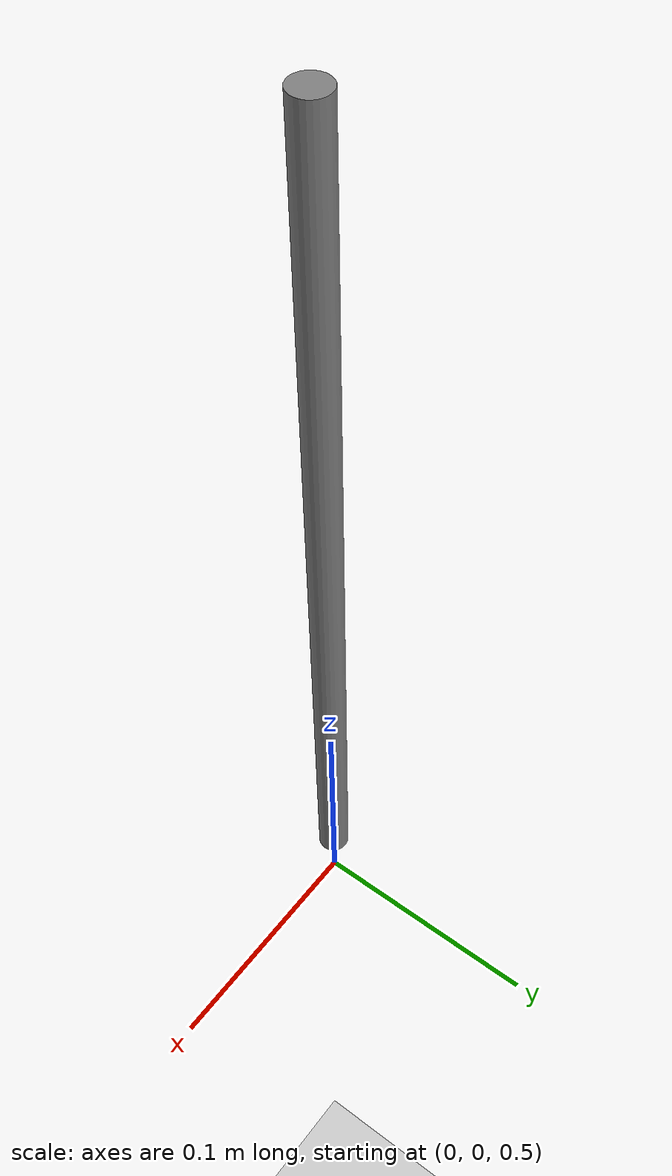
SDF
<?xml version="1.0" ?>
<sdf version="1.11">
    <world name="current_world">
        <physics name="1ms" type="ignored">
            <max_step_size>0.001</max_step_size>
            <real_time_factor>1.0</real_time_factor>
        </physics>
        <plugin
            filename="gz-sim-physics-system"
            name="gz::sim::systems::Physics">
        </plugin>
        <plugin
            filename="gz-sim-user-commands-system"
            name="gz::sim::systems::UserCommands">
        </plugin>
        <plugin
            filename="gz-sim-scene-broadcaster-system"
            name="gz::sim::systems::SceneBroadcaster">
        </plugin>
    <gui fullscreen="0">
	<!-- 3D scene -->
	<plugin filename="MinimalScene" name="3D View">
	    <gz-gui>
		<title>3D View</title>
		<property type="bool" key="showTitleBar">false</property>
		<property type="string" key="state">docked</property>
	    </gz-gui>
	    <engine>ogre</engine>
	    <scene>scene</scene>
	    <ambient_light>0.4 0.4 0.4</ambient_light>
	    <background_color>0.8 0.8 0.8</background_color>
	    <camera_pose>0 -.2 .05 0 0 1.57</camera_pose>
	</plugin>
	<!-- Plugins that add functionality to the scene -->
	<plugin filename="EntityContextMenuPlugin" name="Entity context menu">
	    <gz-gui>
		<property key="state" type="string">floating</property>
		<property key="width" type="double">5</property>
		<property key="height" type="double">5</property>
		<property key="showTitleBar" type="bool">false</property>
	    </gz-gui>
	</plugin>
	<plugin filename="GzSceneManager" name="Scene Manager">
	    <gz-gui>
		<property key="resizable" type="bool">false</property>
		<property key="width" type="double">5</property>
		<property key="height" type="double">5</property>
		<property key="state" type="string">floating</property>
		<property key="showTitleBar" type="bool">false</property>
	    </gz-gui>
	</plugin>
	<plugin filename="InteractiveViewControl" name="Interactive view control">
	    <gz-gui>
		<property key="resizable" type="bool">false</property>
		<property key="width" type="double">5</property>
		<property key="height" type="double">5</property>
		<property key="state" type="string">floating</property>
		<property key="showTitleBar" type="bool">false</property>
	    </gz-gui>
	</plugin>
	<plugin filename="MarkerManager" name="Marker manager">
	    <gz-gui>
		<property key="resizable" type="bool">false</property>
		<property key="width" type="double">5</property>
		<property key="height" type="double">5</property>
		<property key="state" type="string">floating</property>
		<property key="showTitleBar" type="bool">false</property>
	    </gz-gui>
	</plugin>
	<plugin filename="SelectEntities" name="Select Entities">
	    <gz-gui>
		<property key="resizable" type="bool">false</property>
		<property key="width" type="double">5</property>
		<property key="height" type="double">5</property>
		<property key="state" type="string">floating</property>
		<property key="showTitleBar" type="bool">false</property>
	    </gz-gui>
	</plugin>
	<plugin filename="VisualizationCapabilities" name="Visualization Capabilities">
	    <gz-gui>
		<property key="resizable" type="bool">false</property>
		<property key="width" type="double">5</property>
		<property key="height" type="double">5</property>
		<property key="state" type="string">floating</property>
		<property key="showTitleBar" type="bool">false</property>
	    </gz-gui>
	</plugin>
	<!-- World control -->
	<plugin filename="WorldControl" name="World control">
	    <gz-gui>
		<title>World control</title>
		<property type="bool" key="showTitleBar">false</property>
		<property type="bool" key="resizable">false</property>
		<property type="double" key="height">72</property>
		<property type="double" key="z">1</property>
		<property type="string" key="state">floating</property>
		<anchors target="3D View">
		    <line own="left" target="left"/>
		    <line own="bottom" target="bottom"/>
		</anchors>
	    </gz-gui>
	    <play_pause>true</play_pause>
	    <step>true</step>
	    <start_paused>true</start_paused>
	    <use_event>true</use_event>
	</plugin>
	<!-- World statistics -->
	<plugin filename="WorldStats" name="World stats">
	    <gz-gui>
		<title>World stats</title>
		<property type="bool" key="showTitleBar">false</property>
		<property type="bool" key="resizable">false</property>
		<property type="double" key="height">110</property>
		<property type="double" key="width">290</property>
		<property type="double" key="z">1</property>
		<property type="string" key="state">floating</property>
		<anchors target="3D View">
		    <line own="right" target="right"/>
		    <line own="bottom" target="bottom"/>
		</anchors>
	    </gz-gui>
	    <sim_time>true</sim_time>
	    <real_time>true</real_time>
	    <real_time_factor>true</real_time_factor>
	    <iterations>true</iterations>
	</plugin>
	<!-- Translate / rotate -->
	<plugin filename="TransformControl" name="Transform control">
	    <gz-gui>
		<property key="resizable" type="bool">false</property>
		<property key="x" type="double">0</property>
		<property key="y" type="double">50</property>
		<property key="width" type="double">250</property>
		<property key="height" type="double">50</property>
		<property key="state" type="string">floating</property>
		<property key="showTitleBar" type="bool">false</property>
		<property key="cardBackground" type="string">#777777</property>
	    </gz-gui>
	</plugin>
	<!-- Inspector -->
	<plugin filename="ComponentInspector" name="Component inspector">
	    <gz-gui>
		<property type="bool" key="showTitleBar">false</property>
		<property type="string" key="state">docked</property>
	    </gz-gui>
	</plugin>
	<!-- Entity tree -->
	<plugin filename="EntityTree" name="Entity tree">
	    <gz-gui>
		<property type="bool" key="showTitleBar">false</property>
		<property type="string" key="state">docked</property>
	    </gz-gui>
	</plugin>
      </gui>
	<light type="directional" name="sun">
	    <cast_shadows>false</cast_shadows>
	    <pose>0 0 10 0 0 0</pose>
	    <diffuse>0.8 0.8 0.8 1</diffuse>
	    <specular>0.2 0.2 0.2 1</specular>
	    <attenuation>
		<range>1000</range>
		<constant>0.9</constant>
		<linear>0.01</linear>
		<quadratic>0.001</quadratic>
	    </attenuation>
	    <direction>-0.5 0.1 -0.9</direction>
	</light>

	<model name="modGround">
		<static>true</static>
		<link name="lnkGround">
			<collision name="collision">
				<geometry>
				<plane>
				<normal>0 0 1</normal>
				</plane>
				</geometry>
			</collision>
			<visual name="visual">
				<geometry>
					<plane>
						<normal>0 0 1</normal>
						<size>100 100</size>
					</plane>
				</geometry>
				<material>
					<ambient>0.8 0.8 0.8 1</ambient>
					<diffuse>0.8 0.8 0.8 1</diffuse>
					<specular>0.8 0.8 0.8 1</specular>
				</material>
			</visual>
		</link>
		<joint name="weld_temp2" type="fixed">
			<parent>lnkGround</parent>
			<child>modLeg::lnkL</child>
			<pose>0 0 0 0 0 0</pose>
		</joint>
	</model>

	<model name="modLeg">

    	<link name="lnkL">
		<pose>0 0 .7 0 0 0</pose>
		<inertial>
		  <mass>2.483</mass>
		  <inertia>
		    <ixx>0.025957</ixx>  <iyy>0.025957</iyy>
		    <izz>0.00005006</izz>
		    <ixy>0</ixy>
		    <ixz>0</ixz>
		    <iyz>0</iyz>
		  </inertia>
		</inertial>
		<visual name="visual">
		  <geometry>
		    <cylinder>
		      <radius>0.00635</radius>
		      <length>0.3540125</length>
		    </cylinder>
		  </geometry>
		  <material>
		    <ambient>0.5 0.5 0.5 1</ambient>  <diffuse>0.5 0.5 0.5 1</diffuse>
		    <specular>0.1 0.1 0.1 1</specular>
		  </material>
		</visual>
	</link>

	</model>
    </world>
</sdf>
